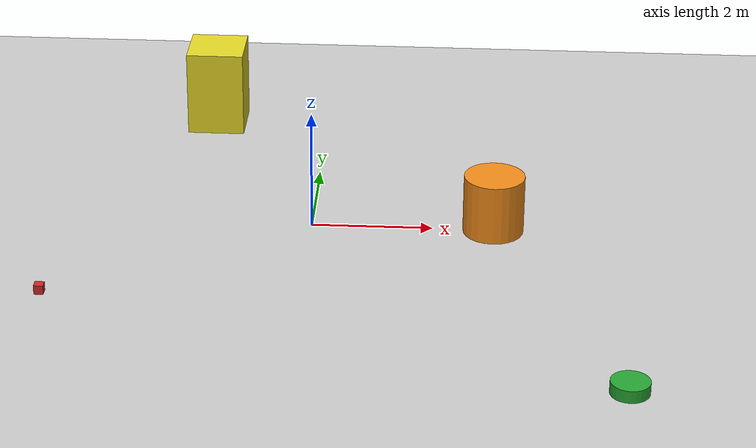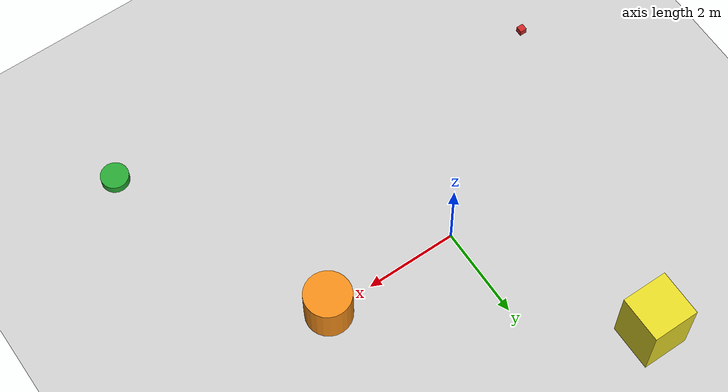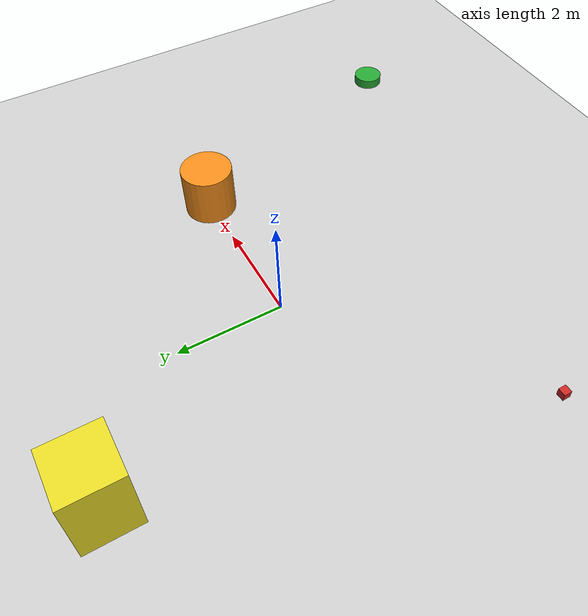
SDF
<?xml version="1.0" ?>
<sdf version="1.6">
  <world name="course_env">

    <!-- 环境光照 -->
    <include>
      <uri>model://sun</uri>
    </include>

    <!-- 地面 -->
    <model name="ground_plane">
      <static>true</static>
      <link name="link">
        <collision name="collision">
          <geometry>
            <plane>
              <normal>0 0 1</normal>
              <size>30 30</size>
            </plane>
          </geometry>
        </collision>
        <visual name="visual">
          <geometry>
            <plane>
              <normal>0 0 1</normal>
              <size>30 30</size>
            </plane>
          </geometry>
          <material>
            <script>
              <uri>file://media/materials/scripts/gazebo.material</uri>
              <name>Gazebo/Grey</name>
            </script>
          </material>
        </visual>
      </link>
    </model>

    <!-- 障碍物1 -->
    <model name="obstacle_1">
      <static>true</static>
      <pose>3 0 0.5 0 0 0</pose>
      <link name="link">
        <collision name="collision">
          <geometry>
            <cylinder>
              <radius>0.5</radius>
              <length>1</length>
            </cylinder>
          </geometry>
        </collision>
        <visual name="visual">
          <geometry>
            <cylinder>
              <radius>0.5</radius>
              <length>1</length>
            </cylinder>
          </geometry>
          <material>
            <script>
              <uri>file://media/materials/scripts/gazebo.material</uri>
              <name>Gazebo/Orange</name>
            </script>
          </material>
        </visual>
      </link>
    </model>

    <!-- 障碍物2 -->
    <model name="obstacle_2">
      <static>true</static>
      <pose>-2 4 0.75 0 0 0</pose>
      <link name="link">
        <collision name="collision">
          <geometry>
            <box>
              <size>1 1 1.5</size>
            </box>
          </geometry>
        </collision>
        <visual name="visual">
          <geometry>
            <box>
              <size>1 1 1.5</size>
            </box>
          </geometry>
          <material>
            <script>
              <uri>file://media/materials/scripts/gazebo.material</uri>
              <name>Gazebo/Yellow</name>
            </script>
          </material>
        </visual>
      </link>
    </model>

    <!-- 目标点 -->
    <model name="goal_point">
      <pose>5 -5 0.1 0 0 0</pose>
      <link name="link">
        <collision name="collision">
          <geometry>
            <cylinder>
              <radius>0.3</radius>
              <length>0.2</length>
            </cylinder>
          </geometry>
        </collision>
        <visual name="visual">
          <geometry>
            <cylinder>
              <radius>0.3</radius>
              <length>0.2</length>
            </cylinder>
          </geometry>
          <material>
            <script>
              <uri>file://media/materials/scripts/gazebo.material</uri>
              <name>Gazebo/Green</name>
            </script>
          </material>
        </visual>
      </link>
    </model>

    <!-- 可抓取物体 -->
    <model name="grasp_object">
      <pose>-4 -3 0.3 0 0 0</pose>
      <link name="link">
        <collision name="collision">
          <geometry>
            <box>
              <size>0.15 0.15 0.15</size>
            </box>
          </geometry>
        </collision>
        <visual name="visual">
          <geometry>
            <box>
              <size>0.15 0.15 0.15</size>
            </box>
          </geometry>
          <material>
            <script>
              <uri>file://media/materials/scripts/gazebo.material</uri>
              <name>Gazebo/Red</name>
            </script>
          </material>
        </visual>
      </link>
    </model>

  </world>
</sdf>
